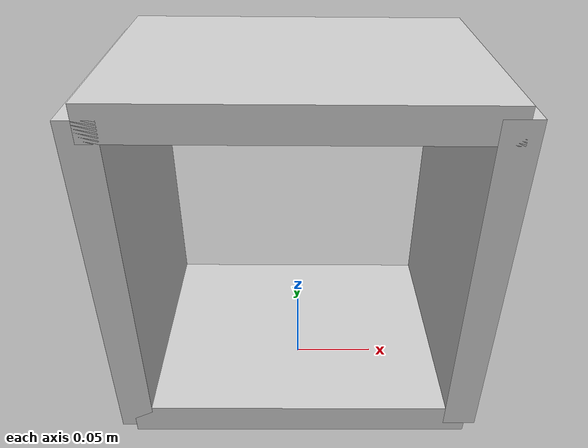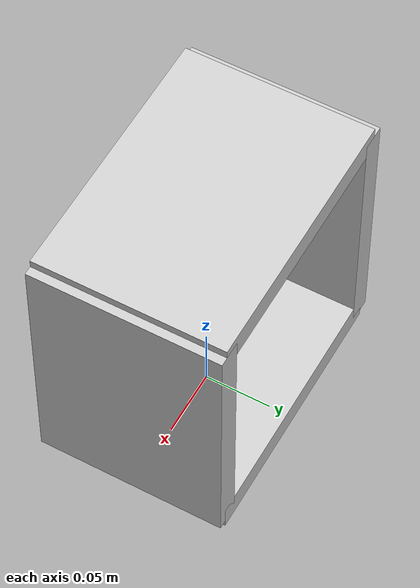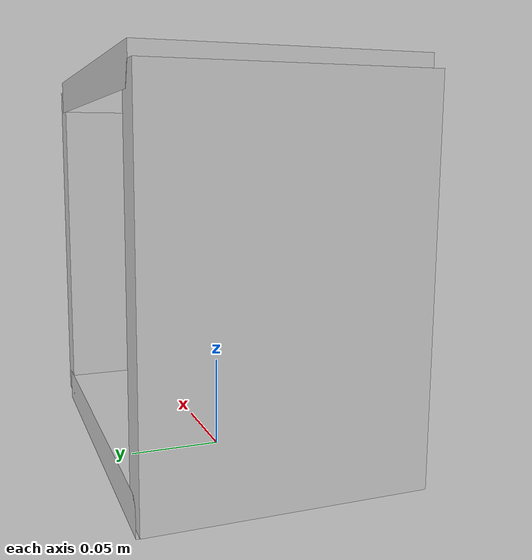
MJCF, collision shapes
<mujoco model="white_storage_box">
  <asset>
    <mesh file="meshes/white_storage_box/visual/white_storage_box_vis.msh" name="white_storage_box_vis" scale="0.015 0.012 0.015"/>
    <texture file="meshes/white_storage_box/ceramic.png" name="tex-white_storage_box" type="2d"/>
    <material name="white_storage_box" reflectance="0.5" texrepeat="1 1" texture="tex-white_storage_box" texuniform="false"/>
  </asset>
  <worldbody>
    <body>
      <body name="object">
        <site type="box" pos="0.00000 -0.00000 0.14250" quat="1 0 0 0" size="0.06425 0.05826 0.00122" group="0" rgba="0.8 0.8 0.0 0" name="top_side"/>
        <site type="box" pos="0.00000 0.00000 0.00468" quat="1 0 0 0" size="0.06425 0.05826 0.00216" group="0" rgba="0.8 0.8 0.0 0" name="bottom_side"/>
        <site type="box" pos="0.06799 0.00000 0.07174" quat="1.00000 -0.00000 0.00123 -0.00000" size="0.00216 0.05826 0.06425" group="0" rgba="0.8 0.8 0.0 0" name="right_side"/>
        <site type="box" pos="-0.06723 0.00000 0.07174" quat="1.00000 -0.00000 0.00123 -0.00000" size="0.00216 0.05826 0.06425" group="0" rgba="0.8 0.8 0.0 0" name="left_side"/>

        <geom solimp="0.998 0.998 0.001" solref="0.001 1" density="100" friction="0.95 0.3 0.1" type="mesh" mesh="white_storage_box_vis" conaffinity="0" contype="0" group="1" material="white_storage_box" />

        <body name="box_center" pos="0.00 0.035 0.10706" />
        <body name="box_side" pos="0.00 0.035 0.20283" />

        <geom solimp="0.998 0.998 0.001" solref="0.001 1" density="100" friction="0.95 0.3 0.1" type="box" pos="0.0963 -0.00000 0.10706" quat="0.00000 0.00000 1.00000 0.00000" size="0.00944 0.06996 0.09825" group="0" rgba="0.8 0.8 0.8 0.3" />
        <geom solimp="0.998 0.998 0.001" solref="0.001 1" density="100" friction="0.95 0.3 0.1" type="box" pos="0.00108 0.00000 0.20283" quat="0.70429 -0.00000 0.70991 0.00000" size="0.00944 0.06996 0.09825" group="0" rgba="0.8 0.8 0.8 0.3" />
        <geom solimp="0.998 0.998 0.001" solref="0.001 1" density="100" friction="0.95 0.3 0.1" type="box" pos="0.00108 -0.00000 0.01296" quat="0.70429 -0.00000 0.70991 -0.00000" size="0.00944 0.06996 0.09825" group="0" rgba="0.8 0.8 0.8 0.3" />
        <geom solimp="0.998 0.998 0.001" solref="0.001 1" density="100" friction="0.95 0.3 0.1" type="box" pos="-0.09588 0.00000 0.10706" quat="0.00000 0.00000 1.00000 0.00000" size="0.00944 0.06996 0.09825" group="0" rgba="0.8 0.8 0.8 0.3" />

      </body>

      <site rgba="0 0 0 0" size="0.005" pos="0 0 -0.06" name="bottom_site" />
      <site rgba="0 0 0 0" size="0.005" pos="0 0 0.04" name="top_site" />
      <site rgba="0 0 0 0" size="0.005" pos="0.025 0.025 0" name="horizontal_radius_site" />
    </body>
  </worldbody>
</mujoco>
